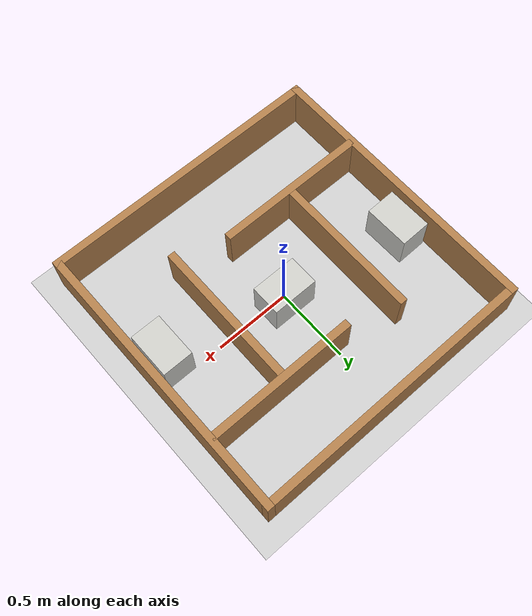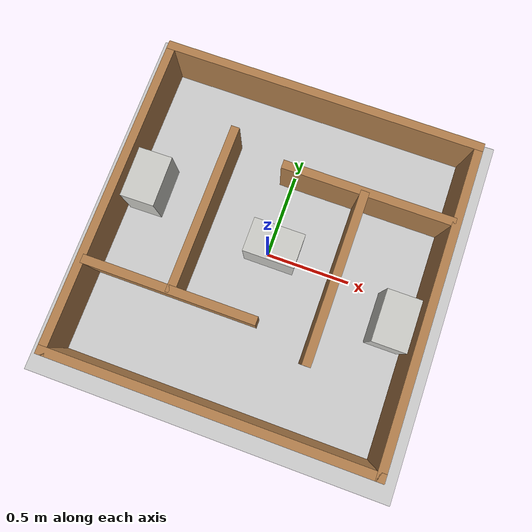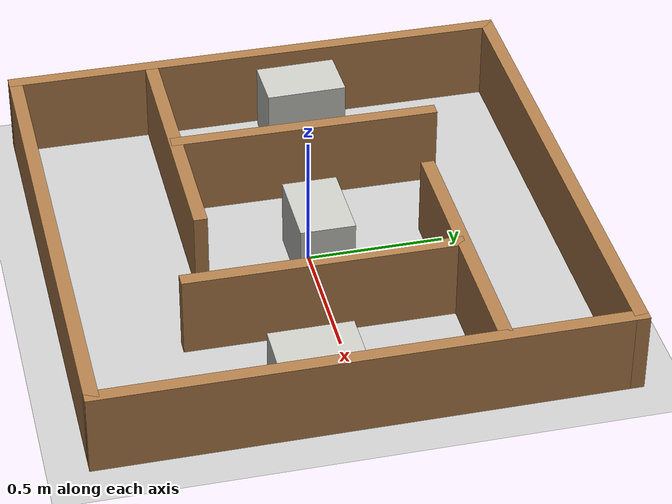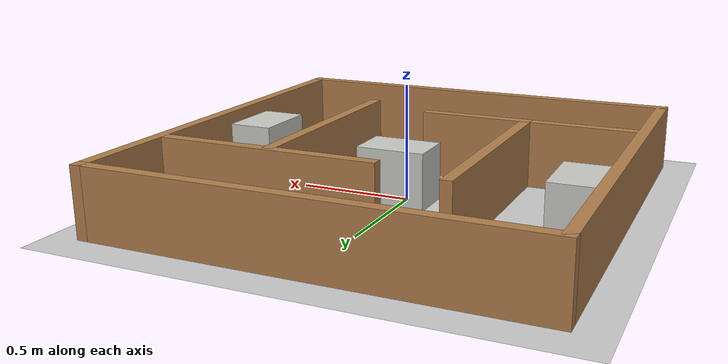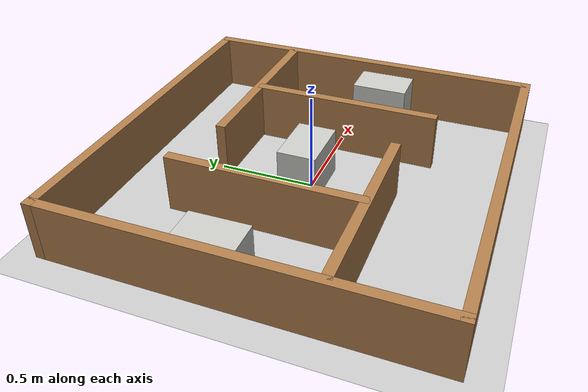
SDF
<sdf version="1.6">
 <world name="default">
  <light name="sun" type="directional">
   <pose>0 0 10 0 -0 0</pose>
   <diffuse>0.8 0.8 0.8 1</diffuse>
   <specular>0.2 0.2 0.2 1</specular>
   <attenuation>
    <range>1000</range>
    <constant>0.9</constant>
    <linear>0.01</linear>
    <quadratic>0.001</quadratic>
   </attenuation>
   <direction>-0.5 0.1 -0.9</direction>
  </light>
  <model name="ground_plane">
   <static>1</static>
   <link name="link">
    <collision name="collision">
     <geometry><plane><normal>0 0 1</normal><size>100 100</size></plane></geometry>
     <surface>
      <contact><collide_bitmask>65535</collide_bitmask></contact>
      <friction><ode><mu>100</mu><mu2>50</mu2></ode></friction>
     </surface>
    </collision>
    <visual name="visual">
     <cast_shadows>0</cast_shadows>
     <geometry><plane><normal>0 0 1</normal><size>100 100</size></plane></geometry>
     <material>
      <script><uri>file://media/materials/scripts/gazebo.material</uri><name>Gazebo/Grey</name></script>
     </material>
    </visual>
   </link>
  </model>
  <gravity>0 0 -9.8</gravity>
  <magnetic_field>6e-06 2.3e-05 -4.2e-05</magnetic_field>
  <atmosphere type="adiabatic"/>
  <physics name="default_physics" default="0" type="ode">
   <max_step_size>0.001</max_step_size>
   <real_time_factor>1</real_time_factor>
   <real_time_update_rate>1000</real_time_update_rate>
  </physics>
  <scene><ambient>0.4 0.4 0.4 1</ambient><background>0.7 0.7 0.7 1</background><shadows>1</shadows></scene>
  <audio><device>default</device></audio>
  <spherical_coordinates>
   <surface_model>EARTH_WGS84</surface_model>
   <latitude_deg>0</latitude_deg>
   <longitude_deg>0</longitude_deg>
   <elevation>0</elevation>
   <heading_deg>0</heading_deg>
  </spherical_coordinates>
  <model name="square">
   <pose>0.001969 0.001172 0 0 -0 0</pose>
   <link name="Wall_0">
    <collision name="Wall_0_Collision">
     <geometry><box><size>1.9 0.05 0.3</size></box></geometry>
     <pose>0 0 0.15 0 -0 0</pose>
    </collision>
    <visual name="Wall_0_Visual">
     <pose>0 0 0.15 0 -0 0</pose>
     <geometry><box><size>1.9 0.05 0.3</size></box></geometry>
     <material>
      <script><uri>file://media/materials/scripts/gazebo.material</uri><name>Gazebo/Wood</name></script>
      <ambient>1 1 1 1</ambient>
     </material>
     <meta><layer>0</layer></meta>
    </visual>
    <pose>0 0.925 0 0 -0 3.14159</pose>
   </link>
   <link name="Wall_1">
    <collision name="Wall_1_Collision">
     <geometry><box><size>1.9 0.05 0.3</size></box></geometry>
     <pose>0 0 0.15 0 -0 0</pose>
    </collision>
    <visual name="Wall_1_Visual">
     <pose>0 0 0.15 0 -0 0</pose>
     <geometry><box><size>1.9 0.05 0.3</size></box></geometry>
     <material>
      <script><uri>file://media/materials/scripts/gazebo.material</uri><name>Gazebo/Wood</name></script>
      <ambient>1 1 1 1</ambient>
     </material>
     <meta><layer>0</layer></meta>
    </visual>
    <pose>-0.925 -0 0 0 -0 -1.5708</pose>
   </link>
   <link name="Wall_2">
    <collision name="Wall_2_Collision">
     <geometry><box><size>1.9 0.05 0.3</size></box></geometry>
     <pose>0 0 0.15 0 -0 0</pose>
    </collision>
    <visual name="Wall_2_Visual">
     <pose>0 0 0.15 0 -0 0</pose>
     <geometry><box><size>1.9 0.05 0.3</size></box></geometry>
     <material>
      <script><uri>file://media/materials/scripts/gazebo.material</uri><name>Gazebo/Wood</name></script>
      <ambient>1 1 1 1</ambient>
     </material>
     <meta><layer>0</layer></meta>
    </visual>
    <pose>0 -0.925 0 0 -0 0</pose>
   </link>
   <link name="Wall_3">
    <collision name="Wall_3_Collision">
     <geometry><box><size>1.9 0.05 0.3</size></box></geometry>
     <pose>0 0 0.15 0 -0 0</pose>
    </collision>
    <visual name="Wall_3_Visual">
     <pose>0 0 0.15 0 -0 0</pose>
     <geometry><box><size>1.9 0.05 0.3</size></box></geometry>
     <material>
      <script><uri>file://media/materials/scripts/gazebo.material</uri><name>Gazebo/Wood</name></script>
      <ambient>1 1 1 1</ambient>
     </material>
     <meta><layer>0</layer></meta>
    </visual>
    <pose>0.925 -0 0 0 -0 1.5708</pose>
   </link>
   <static>1</static>
  </model>
  <model name="wall1m">
   <pose>-0.417516 -0.40526 0 0 -0 0</pose>
   <link name="Wall_5">
    <collision name="Wall_5_Collision">
     <geometry><box><size>1 0.05 0.3</size></box></geometry>
     <pose>0 0 0.15 0 -0 0</pose>
    </collision>
    <visual name="Wall_5_Visual">
     <pose>0 0 0.15 0 -0 0</pose>
     <geometry><box><size>1 0.05 0.3</size></box></geometry>
     <material>
      <script><uri>file://media/materials/scripts/gazebo.material</uri><name>Gazebo/Wood</name></script>
      <ambient>1 1 1 1</ambient>
     </material>
     <meta><layer>0</layer></meta>
    </visual>
    <pose>-0 0 0 0 -0 3.14159</pose>
   </link>
   <static>1</static>
  </model>
  <model name="box">
   <pose>-0.781655 0.149718 0 0 0 -1.55504</pose>
   <link name="Wall_7">
    <collision name="Wall_7_Collision">
     <geometry><box><size>0.3 0.2 0.25</size></box></geometry>
     <pose>0 0 0.125 0 -0 0</pose>
    </collision>
    <visual name="Wall_7_Visual">
     <pose>0 0 0.125 0 -0 0</pose>
     <geometry><box><size>0.3 0.2 0.25</size></box></geometry>
     <material>
      <script><uri>file://media/materials/scripts/gazebo.material</uri><name>Gazebo/CeilingTiled</name></script>
      <ambient>1 1 1 1</ambient>
     </material>
     <meta><layer>0</layer></meta>
    </visual>
   </link>
   <static>1</static>
  </model>
  <model name="box_0">
   <pose>0.786021 -0.148545 0 0 0 -1.57113</pose>
   <link name="Wall_7">
    <collision name="Wall_7_Collision">
     <geometry><box><size>0.3 0.2 0.25</size></box></geometry>
     <pose>0 0 0.125 0 -0 0</pose>
    </collision>
    <visual name="Wall_7_Visual">
     <pose>0 0 0.125 0 -0 0</pose>
     <geometry><box><size>0.3 0.2 0.25</size></box></geometry>
     <material>
      <script><uri>file://media/materials/scripts/gazebo.material</uri><name>Gazebo/CeilingTiled</name></script>
      <ambient>1 1 1 1</ambient>
     </material>
     <meta><layer>0</layer></meta>
    </visual>
   </link>
   <static>1</static>
  </model>
  <model name="wall1m_0">
   <pose>0.421303 0.459123 0 0 -0 0</pose>
   <link name="Wall_5">
    <collision name="Wall_5_Collision">
     <geometry><box><size>1 0.05 0.3</size></box></geometry>
     <pose>0 0 0.15 0 -0 0</pose>
    </collision>
    <visual name="Wall_5_Visual">
     <pose>0 0 0.15 0 -0 0</pose>
     <geometry><box><size>1 0.05 0.3</size></box></geometry>
     <material>
      <script><uri>file://media/materials/scripts/gazebo.material</uri><name>Gazebo/Wood</name></script>
      <ambient>1 1 1 1</ambient>
     </material>
     <meta><layer>0</layer></meta>
    </visual>
    <pose>-0 0 0 0 -0 3.14159</pose>
   </link>
   <static>1</static>
  </model>
  <model name="wall1m_1">
   <pose>-0.40299 0.077655 0 0 -0 1.56523</pose>
   <link name="Wall_5">
    <collision name="Wall_5_Collision">
     <geometry><box><size>1 0.05 0.3</size></box></geometry>
     <pose>0 0 0.15 0 -0 0</pose>
    </collision>
    <visual name="Wall_5_Visual">
     <pose>0 0 0.15 0 -0 0</pose>
     <geometry><box><size>1 0.05 0.3</size></box></geometry>
     <material>
      <script><uri>file://media/materials/scripts/gazebo.material</uri><name>Gazebo/Wood</name></script>
      <ambient>1 1 1 1</ambient>
     </material>
     <meta><layer>0</layer></meta>
    </visual>
    <pose>-0 0 0 0 -0 3.14159</pose>
   </link>
   <static>1</static>
  </model>
  <model name="wall1m_2">
   <pose>0.401952 -0.037512 0 0 0 -1.5738</pose>
   <link name="Wall_5">
    <collision name="Wall_5_Collision">
     <geometry><box><size>1 0.05 0.3</size></box></geometry>
     <pose>0 0 0.15 0 -0 0</pose>
    </collision>
    <visual name="Wall_5_Visual">
     <pose>0 0 0.15 0 -0 0</pose>
     <geometry><box><size>1 0.05 0.3</size></box></geometry>
     <material>
      <script><uri>file://media/materials/scripts/gazebo.material</uri><name>Gazebo/Wood</name></script>
      <ambient>1 1 1 1</ambient>
     </material>
     <meta><layer>0</layer></meta>
    </visual>
    <pose>-0 0 0 0 -0 3.14159</pose>
   </link>
   <static>1</static>
  </model>
  <model name="box_1">
   <pose>0.023376 0.032322 0 0 -0 0</pose>
   <link name="Wall_7">
    <collision name="Wall_7_Collision">
     <geometry><box><size>0.3 0.2 0.25</size></box></geometry>
     <pose>0 0 0.125 0 -0 0</pose>
    </collision>
    <visual name="Wall_7_Visual">
     <pose>0 0 0.125 0 -0 0</pose>
     <geometry><box><size>0.3 0.2 0.25</size></box></geometry>
     <material>
      <script><uri>file://media/materials/scripts/gazebo.material</uri><name>Gazebo/CeilingTiled</name></script>
      <ambient>1 1 1 1</ambient>
     </material>
     <meta><layer>0</layer></meta>
    </visual>
   </link>
   <static>1</static>
  </model>
 </world>
</sdf>
